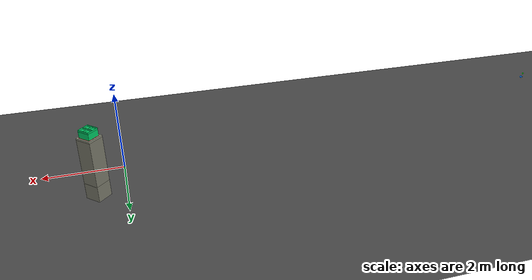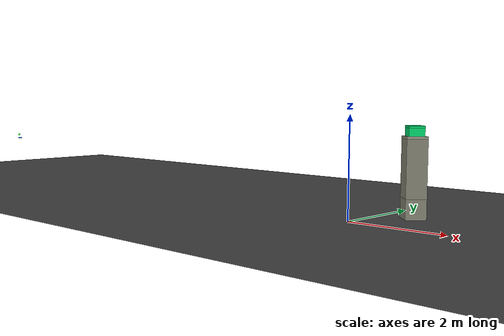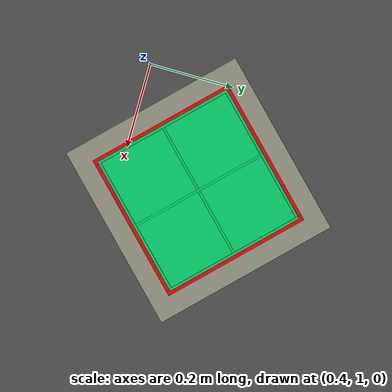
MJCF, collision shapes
<mujoco model="rm27_isolated_dock_base">
  <compiler angle="radian" />
  <option timestep=".002" integrator="RK4" gravity="0 0 -9.81" />
  <statistic center="-5.5 0.6 0.8" extent="15" />
  <visual>
    <global offwidth="1200" offheight="800" />
    <headlight ambient=".4 .4 .4" diffuse=".7 .7 .7" />
  </visual>
  <asset>
    <texture name="sky" type="skybox" builtin="gradient" rgb1="0.18 0.28 0.40" rgb2="0.02 0.03 0.05" width="512" height="3072" />
    <texture name="grid" type="2d" builtin="checker" rgb1="0.25 0.25 0.25" rgb2="0.35 0.35 0.35" width="512" height="512" />
    <material name="ground" texture="grid" texrepeat="1 1" texuniform="true" reflectance="0.08" />
    <mesh name="isolated_field__visual__05" file="assets/isolated_field__visual__05.obj" maxhullvert="4" />
    <mesh name="isolated_field__visual__06" file="assets/isolated_field__visual__06.obj" maxhullvert="4" />
    <mesh name="isolated_field__visual__23" file="assets/isolated_field__visual__23.obj" maxhullvert="4" />
    <mesh name="isolated_field__visual__24" file="assets/isolated_field__visual__24.obj" maxhullvert="4" />
    <mesh name="isolated_field__visual__25" file="assets/isolated_field__visual__25.obj" maxhullvert="4" />
    <mesh name="isolated_field__visual__28" file="assets/isolated_field__visual__28.obj" maxhullvert="4" />
    <mesh name="isolated_field__visual__30" file="assets/isolated_field__visual__30.obj" maxhullvert="4" />
    <mesh name="isolated_field__visual__33" file="assets/isolated_field__visual__33.obj" maxhullvert="4" />
    <mesh name="isolated_field__visual__34" file="assets/isolated_field__visual__34.obj" maxhullvert="4" />
    <mesh name="isolated_field__visual__35" file="assets/isolated_field__visual__35.obj" maxhullvert="4" />
    <mesh name="isolated_field__visual__36" file="assets/isolated_field__visual__36.obj" maxhullvert="4" />
    <mesh name="isolated_field__visual__37" file="assets/isolated_field__visual__37.obj" maxhullvert="4" />
    <mesh name="isolated_field__visual__39" file="assets/isolated_field__visual__39.obj" maxhullvert="4" />
    <mesh name="isolated_field__visual__40" file="assets/isolated_field__visual__40.obj" maxhullvert="4" />
    <mesh name="isolated_field__visual__41" file="assets/isolated_field__visual__41.obj" maxhullvert="4" />
    <mesh name="rm27_dock_visual" file="assets/rm27_dock_visual.obj" maxhullvert="4" />
  </asset>
  <worldbody>
    <light pos="-5 0 8" directional="true" dir="0 0 -1" />
    <geom name="test_floor" type="plane" size="20 10 .1" material="ground" />
    <geom name="isolated_field__visual__05" type="mesh" mesh="isolated_field__visual__05" rgba="0.6000000238418579 0.6000000238418579 0.6000000238418579 1.0" contype="0" conaffinity="0" group="2" />
    <geom name="isolated_field__visual__06" type="mesh" mesh="isolated_field__visual__06" rgba="0.6000000238418579 0.6000000238418579 0.6000000238418579 1.0" contype="0" conaffinity="0" group="2" />
    <geom name="isolated_field__visual__23" type="mesh" mesh="isolated_field__visual__23" rgba="0.4000000059604645 0.4000000059604645 0.4000000059604645 1.0" contype="0" conaffinity="0" group="2" />
    <geom name="isolated_field__visual__24" type="mesh" mesh="isolated_field__visual__24" rgba="0.4000000059604645 0.4000000059604645 0.4000000059604645 1.0" contype="0" conaffinity="0" group="2" />
    <geom name="isolated_field__visual__25" type="mesh" mesh="isolated_field__visual__25" rgba="0.4000000059604645 0.4000000059604645 0.4000000059604645 1.0" contype="0" conaffinity="0" group="2" />
    <geom name="isolated_field__visual__28" type="mesh" mesh="isolated_field__visual__28" rgba="0.22745098173618317 0.5411764979362488 0.5568627715110779 1.0" contype="0" conaffinity="0" group="2" />
    <geom name="isolated_field__visual__30" type="mesh" mesh="isolated_field__visual__30" rgba="1.0 1.0 1.0 1.0" contype="0" conaffinity="0" group="2" />
    <geom name="isolated_field__visual__33" type="mesh" mesh="isolated_field__visual__33" rgba="0.2980392277240753 0.2980392277240753 0.2980392277240753 1.0" contype="0" conaffinity="0" group="2" />
    <geom name="isolated_field__visual__34" type="mesh" mesh="isolated_field__visual__34" rgba="1.0 0.0 0.0 1.0" contype="0" conaffinity="0" group="2" />
    <geom name="isolated_field__visual__35" type="mesh" mesh="isolated_field__visual__35" rgba="1.0 0.9372549057006836 0.6627451181411743 1.0" contype="0" conaffinity="0" group="2" />
    <geom name="isolated_field__visual__36" type="mesh" mesh="isolated_field__visual__36" rgba="0.2509803771972656 0.21568627655506134 0.1921568661928177 1.0" contype="0" conaffinity="0" group="2" />
    <geom name="isolated_field__visual__37" type="mesh" mesh="isolated_field__visual__37" rgba="0.2509803771972656 0.21568627655506134 0.1921568661928177 1.0" contype="0" conaffinity="0" group="2" />
    <geom name="isolated_field__visual__39" type="mesh" mesh="isolated_field__visual__39" rgba="0.0 0.4000000059604645 0.6000000238418579 1.0" contype="0" conaffinity="0" group="2" />
    <geom name="isolated_field__visual__40" type="mesh" mesh="isolated_field__visual__40" rgba="0.0470588244497776 0.0470588244497776 0.0470588244497776 1.0" contype="0" conaffinity="0" group="2" />
    <geom name="isolated_field__visual__41" type="mesh" mesh="isolated_field__visual__41" rgba="0.0 1.0 1.0 1.0" contype="0" conaffinity="0" group="2" />
    <geom name="field__visual__hangar_red_column" type="box" pos="0.651751442 1.186726189 0.97" quat="0.9238795325112867 0.0 0.0 0.3826834323650898" size="0.2 0.2 0.57" rgba="0.47999998927116394 0.47999998927116394 0.41999998688697815 1.0" group="2" contype="0" conaffinity="0" friction="1.0 0.005 0.0001" solref="0.02 1.0" solimp="0.9 0.95 0.001 0.5 2.0" />
    <geom name="field__collision__hangar_red_column" type="box" pos="0.651751442 1.186726189 0.97" quat="0.9238795325112867 0.0 0.0 0.3826834323650898" size="0.2 0.2 0.57" rgba="0.0 0.0 0.0 0.0" group="3" contype="1" conaffinity="1" friction="0.8 0.01 0.001" solref="0.01 1.0" solimp="0.95 0.99 0.001 0.5 2.0" />
    <geom name="field__visual__hangar_red_top_plate" type="box" pos="0.651751442 1.186726189 1.56" quat="0.9238795325112867 0.0 0.0 0.3826834323650898" size="0.2 0.2 0.02" rgba="0.5699999928474426 0.5699999928474426 0.5 1.0" group="2" contype="0" conaffinity="0" friction="1.0 0.005 0.0001" solref="0.02 1.0" solimp="0.9 0.95 0.001 0.5 2.0" />
    <geom name="field__collision__hangar_red_top_plate" type="box" pos="0.651751442 1.186726189 1.56" quat="0.9238795325112867 0.0 0.0 0.3826834323650898" size="0.2 0.2 0.02" rgba="0.0 0.0 0.0 0.0" group="3" contype="1" conaffinity="1" friction="0.8 0.01 0.001" solref="0.01 1.0" solimp="0.95 0.99 0.001 0.5 2.0" />
    <geom name="field__visual__hangar_red_landing_panel" type="box" pos="0.651751442 1.186726189 1.5805000000000002" quat="0.9238795325112867 0.0 0.0 0.3826834323650898" size="0.16 0.16 0.0005" rgba="0.2800000011920929 0.2800000011920929 0.2800000011920929 1.0" group="2" contype="0" conaffinity="0" friction="1.0 0.005 0.0001" solref="0.02 1.0" solimp="0.9 0.95 0.001 0.5 2.0" />
    <geom name="field__visual__hangar_red_border_x_-1" type="box" pos="0.5428569976972717 1.0778317446972716 1.5812" quat="0.9238795325112867 0.0 0.0 0.3826834323650898" size="0.006 0.16 0.0005" rgba="0.8500000238418579 0.014999999664723873 0.014999999664723873 1.0" group="2" contype="0" conaffinity="0" friction="1.0 0.005 0.0001" solref="0.02 1.0" solimp="0.9 0.95 0.001 0.5 2.0" />
    <geom name="field__visual__hangar_red_border_y_-1" type="box" pos="0.7606458863027283 1.0778317446972718 1.5812" quat="0.9238795325112867 0.0 0.0 0.3826834323650898" size="0.148 0.006 0.0005" rgba="0.8500000238418579 0.014999999664723873 0.014999999664723873 1.0" group="2" contype="0" conaffinity="0" friction="1.0 0.005 0.0001" solref="0.02 1.0" solimp="0.9 0.95 0.001 0.5 2.0" />
    <geom name="field__visual__hangar_red_H_leg_-1" type="box" pos="0.6022539673169417 1.1372287143169417 1.5823999999999998" quat="0.9238795325112867 0.0 0.0 0.3826834323650898" size="0.015 0.1 0.0005" rgba="1.0 1.0 1.0 1.0" group="2" contype="0" conaffinity="0" friction="1.0 0.005 0.0001" solref="0.02 1.0" solimp="0.9 0.95 0.001 0.5 2.0" />
    <geom name="field__visual__hangar_red_border_x_1" type="box" pos="0.7606458863027283 1.2956206333027285 1.5812" quat="0.9238795325112867 0.0 0.0 0.3826834323650898" size="0.006 0.16 0.0005" rgba="0.8500000238418579 0.014999999664723873 0.014999999664723873 1.0" group="2" contype="0" conaffinity="0" friction="1.0 0.005 0.0001" solref="0.02 1.0" solimp="0.9 0.95 0.001 0.5 2.0" />
    <geom name="field__visual__hangar_red_border_y_1" type="box" pos="0.5428569976972717 1.2956206333027283 1.5812" quat="0.9238795325112867 0.0 0.0 0.3826834323650898" size="0.148 0.006 0.0005" rgba="0.8500000238418579 0.014999999664723873 0.014999999664723873 1.0" group="2" contype="0" conaffinity="0" friction="1.0 0.005 0.0001" solref="0.02 1.0" solimp="0.9 0.95 0.001 0.5 2.0" />
    <geom name="field__visual__hangar_red_H_leg_1" type="box" pos="0.7012489166830583 1.2362236636830584 1.5823999999999998" quat="0.9238795325112867 0.0 0.0 0.3826834323650898" size="0.015 0.1 0.0005" rgba="1.0 1.0 1.0 1.0" group="2" contype="0" conaffinity="0" friction="1.0 0.005 0.0001" solref="0.02 1.0" solimp="0.9 0.95 0.001 0.5 2.0" />
    <geom name="field__visual__hangar_red_H_cross" type="box" pos="0.651751442 1.186726189 1.5823999999999998" quat="0.9238795325112867 0.0 0.0 0.3826834323650898" size="0.055 0.015 0.0005" rgba="1.0 1.0 1.0 1.0" group="2" contype="0" conaffinity="0" friction="1.0 0.005 0.0001" solref="0.02 1.0" solimp="0.9 0.95 0.001 0.5 2.0" />
    <geom name="rm27_dock_visual" type="mesh" mesh="rm27_dock_visual" rgba="0.30000001192092896 0.36000001430511475 0.41999998688697815 1.0" contype="0" conaffinity="0" group="2" />
    <geom name="rm27_dock_collision_bottom" type="box" pos="0.651751442 1.186726189 1.6600000000000001" quat="0.9238795325112867 0.0 0.0 0.3826834323650898" size="0.15 0.15 0.08" rgba="0.0 0.800000011920929 0.4000000059604645 0.0" group="3" contype="1" conaffinity="1" friction="0.8 0.01 0.001" solref="0.01 1.0" solimp="0.95 0.99 0.001 0.5 2.0" />
    <geom name="rm27_dock_collision_west" type="box" pos="0.5474531917749843 1.0824279387749842 1.76" quat="0.9238795325112867 0.0 0.0 0.3826834323650898" size="0.0025 0.15 0.02" rgba="0.0 0.800000011920929 0.4000000059604645 0.0" group="3" contype="1" conaffinity="1" friction="0.8 0.01 0.001" solref="0.01 1.0" solimp="0.95 0.99 0.001 0.5 2.0" />
    <geom name="rm27_dock_collision_east" type="box" pos="0.7560496922250157 1.2910244392250159 1.76" quat="0.9238795325112867 0.0 0.0 0.3826834323650898" size="0.0025 0.15 0.02" rgba="0.0 0.800000011920929 0.4000000059604645 0.0" group="3" contype="1" conaffinity="1" friction="0.8 0.01 0.001" solref="0.01 1.0" solimp="0.95 0.99 0.001 0.5 2.0" />
    <geom name="rm27_dock_collision_south" type="box" pos="0.7560496922250157 1.0824279387749842 1.76" quat="0.9238795325112867 0.0 0.0 0.3826834323650898" size="0.145 0.0025 0.02" rgba="0.0 0.800000011920929 0.4000000059604645 0.0" group="3" contype="1" conaffinity="1" friction="0.8 0.01 0.001" solref="0.01 1.0" solimp="0.95 0.99 0.001 0.5 2.0" />
    <geom name="rm27_dock_collision_north" type="box" pos="0.5474531917749843 1.2910244392250159 1.76" quat="0.9238795325112867 0.0 0.0 0.3826834323650898" size="0.145 0.0025 0.02" rgba="0.0 0.800000011920929 0.4000000059604645 0.0" group="3" contype="1" conaffinity="1" friction="0.8 0.01 0.001" solref="0.01 1.0" solimp="0.95 0.99 0.001 0.5 2.0" />
    <geom name="rm27_dock_collision_divider_x" type="box" pos="0.651751442 1.186726189 1.76" quat="0.9238795325112867 0.0 0.0 0.3826834323650898" size="0.0025 0.145 0.02" rgba="0.0 0.800000011920929 0.4000000059604645 0.0" group="3" contype="1" conaffinity="1" friction="0.8 0.01 0.001" solref="0.01 1.0" solimp="0.95 0.99 0.001 0.5 2.0" />
    <geom name="rm27_dock_collision_divider_y_w" type="box" pos="0.5996023168874921 1.1345770638874921 1.76" quat="0.9238795325112867 0.0 0.0 0.3826834323650898" size="0.07125 0.0025 0.02" rgba="0.0 0.800000011920929 0.4000000059604645 0.0" group="3" contype="1" conaffinity="1" friction="0.8 0.01 0.001" solref="0.01 1.0" solimp="0.95 0.99 0.001 0.5 2.0" />
    <geom name="rm27_dock_collision_divider_y_e" type="box" pos="0.7039005671125079 1.238875314112508 1.76" quat="0.9238795325112867 0.0 0.0 0.3826834323650898" size="0.07125 0.0025 0.02" rgba="0.0 0.800000011920929 0.4000000059604645 0.0" group="3" contype="1" conaffinity="1" friction="0.8 0.01 0.001" solref="0.01 1.0" solimp="0.95 0.99 0.001 0.5 2.0" />
    <geom name="test_column_footing" type="box" pos="0.651751442 1.186726189 0.2" quat="0.9238795325112867 0.0 0.0 0.3826834323650898" size="0.2 0.2 0.2" rgba=".48 .48 .42 1" />
    <site name="dock_frame" pos="0.651751442 1.186726189 1.58" size=".001" rgba="0 0 0 0" />
    <site name="slot_1" pos="0.651751442 1.0824279387749842 1.74" size=".001" rgba="0 0 0 0" />
    <site name="slot_2" pos="0.5474531917749843 1.186726189 1.74" size=".001" rgba="0 0 0 0" />
    <site name="slot_3" pos="0.7560496922250157 1.186726189 1.74" size=".001" rgba="0 0 0 0" />
    <site name="slot_4" pos="0.651751442 1.2910244392250159 1.74" size=".001" rgba="0 0 0 0" />
    <body name="rm27_base_frame">
      <geom name="rm27_base_armor" type="box" pos="-11.469385144401516 0.02 1.0731389146975434" quat="0.6868457676495124 0.16805621518394342 0.16805621518394342 0.6868457676495126" size="0.045 0.0275 0.003" rgba="0.02 0.45 0.95 1" group="0" contype="1" conaffinity="1" friction=".8 .01 .001" solref=".01 1" solimp=".95 .99 .001" />
      <site name="rm27_base_armor_center" pos="-11.468 0.02 1.0758" quat="0.6868457676495124 0.16805621518394342 0.16805621518394342 0.6868457676495126" size=".002" rgba="0 0 0 0" />
      <site name="rm27_base_marker_center" pos="-11.515 0.02 1.17" size=".002" rgba="0 0 0 0" />
      <geom name="rm27_base_marker" type="cylinder" pos="-11.515 0.02 1.17" zaxis="1.0 0.0 0.0" size="0.0275 0.002" rgba="0.02 1 0.03 1" contype="0" conaffinity="0" group="0" />
    </body>
  </worldbody>
</mujoco>
